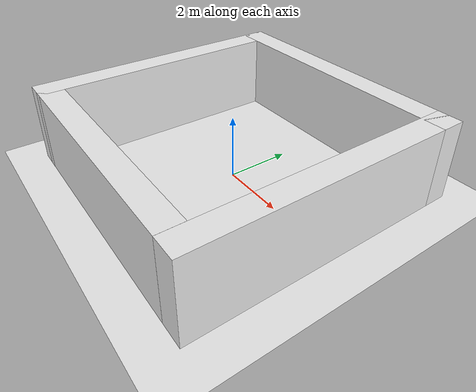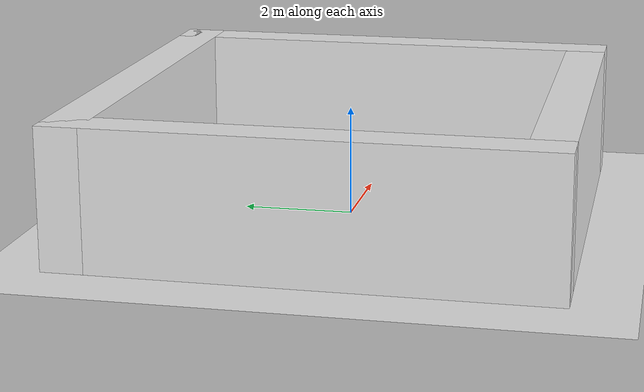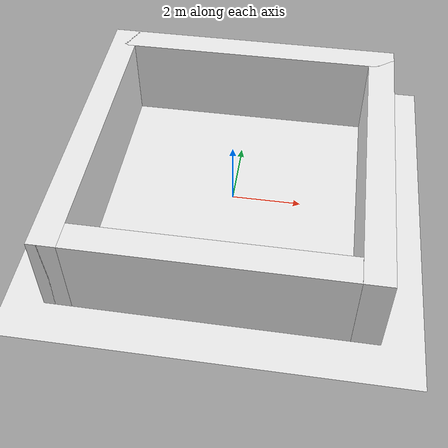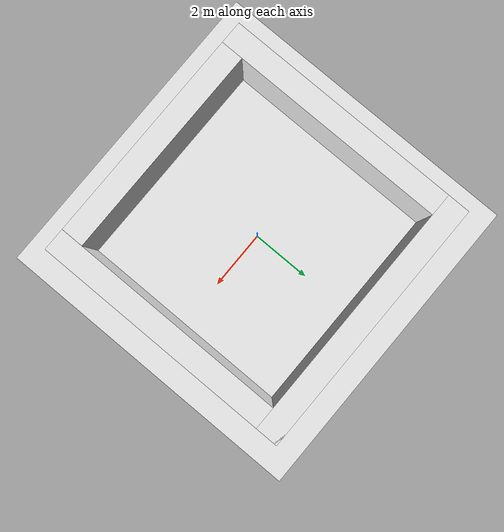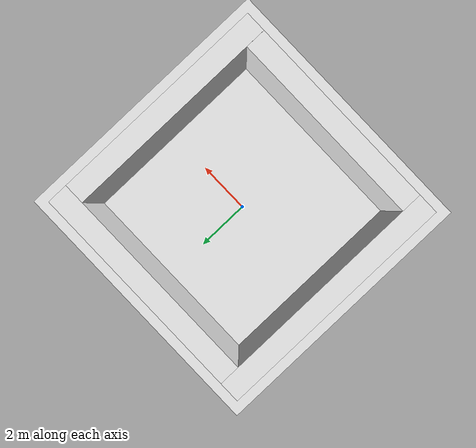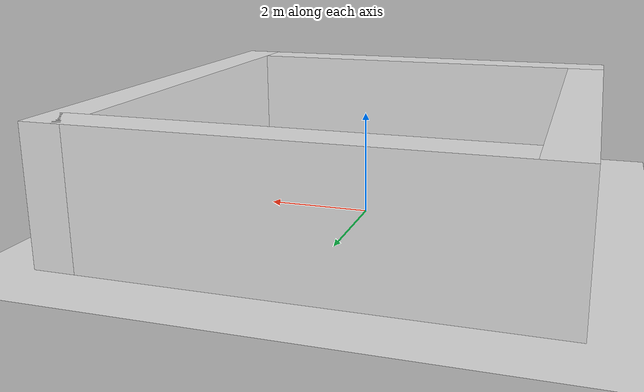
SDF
<sdf version="1.6">
 <world name="default">
  <light name="sun" type="directional">
   <pose>0 0 10 0 -0 0</pose>
   <diffuse>0.8 0.8 0.8 1</diffuse>
   <specular>0.2 0.2 0.2 1</specular>
   <attenuation>
    <range>1000</range>
    <constant>0.9</constant>
    <linear>0.01</linear>
    <quadratic>0.001</quadratic>
   </attenuation>
   <direction>-0.5 0.1 -0.9</direction>
  </light>
  <light name="sun" type="directional">
   <pose>0 0 13 0 -0 0</pose>
   <diffuse>0.8 0.8 0.8 1</diffuse>
   <specular>0.2 0.2 0.2 1</specular>
   <attenuation>
    <range>1000</range>
    <constant>0.9</constant>
    <linear>0.01</linear>
    <quadratic>0.001</quadratic>
   </attenuation>
   <direction>-0.5 0.1 -0.9</direction>
  </light>
  <model name="ground_plane">
   <static>1</static>
   <link name="link">
    <collision name="collision">
     <geometry><plane><normal>0 0 1</normal><size>100 100</size></plane></geometry>
     <surface>
      <contact><collide_bitmask>65535</collide_bitmask></contact>
      <friction><ode><mu>100</mu><mu2>50</mu2></ode></friction>
     </surface>
    </collision>
    <visual name="visual">
     <cast_shadows>0</cast_shadows>
     <geometry><plane><normal>0 0 1</normal><size>100 100</size></plane></geometry>
     <material>
      <script><uri>file://media/materials/scripts/gazebo.material</uri><name>Gazebo/White</name></script>
     </material>
    </visual>
   </link>
  </model>
  <gravity>0 0 -9.8</gravity>
  <magnetic_field>6e-06 2.3e-05 -4.2e-05</magnetic_field>
  <atmosphere type="adiabatic"/>
  <physics name="default_physics" default="0" type="ode">
   <max_step_size>0.001</max_step_size>
   <real_time_factor>1</real_time_factor>
   <real_time_update_rate>1000</real_time_update_rate>
  </physics>
  <scene><ambient>0.4 0.4 0.4 1</ambient><background>0.7 0.7 0.7 1</background><shadows>0</shadows></scene>
  <audio><device>default</device></audio>
  <spherical_coordinates>
   <surface_model>EARTH_WGS84</surface_model>
   <latitude_deg>0</latitude_deg>
   <longitude_deg>0</longitude_deg>
   <elevation>0</elevation>
   <heading_deg>0</heading_deg>
  </spherical_coordinates>
  <model name="m1">
   <link name="Wall_0">
    <collision name="Wall_0_Collision">
     <geometry><box><size>8.76 0.76 2.5</size></box></geometry>
     <pose>0 0 1.25 0 -0 0</pose>
    </collision>
    <visual name="Wall_0_Visual">
     <pose>0 0 1.25 0 -0 0</pose>
     <geometry><box><size>8.76 0.76 2.5</size></box></geometry>
     <material>
      <script><uri>file://media/materials/scripts/gazebo.material</uri><name>Gazebo/White</name></script>
      <ambient>1 1 1 1</ambient>
     </material>
     <meta><layer>0</layer></meta>
    </visual>
    <pose>-4 0 0 0 -0 -1.5708</pose>
   </link>
   <link name="Wall_2">
    <collision name="Wall_2_Collision">
     <geometry><box><size>8.76 0.76 2.5</size></box></geometry>
     <pose>0 0 1.25 0 -0 0</pose>
    </collision>
    <visual name="Wall_2_Visual">
     <pose>0 0 1.25 0 -0 0</pose>
     <geometry><box><size>8.76 0.76 2.5</size></box></geometry>
     <material>
      <script><uri>file://media/materials/scripts/gazebo.material</uri><name>Gazebo/White</name></script>
      <ambient>1 1 1 1</ambient>
     </material>
     <meta><layer>0</layer></meta>
    </visual>
    <pose>0 4 0 0 -0 3.14159</pose>
   </link>
   <link name="Wall_4">
    <collision name="Wall_4_Collision">
     <geometry><box><size>8.76 0.76 2.5</size></box></geometry>
     <pose>0 0 1.25 0 -0 0</pose>
    </collision>
    <visual name="Wall_4_Visual">
     <pose>0 0 1.25 0 -0 0</pose>
     <geometry><box><size>8.76 0.76 2.5</size></box></geometry>
     <material>
      <script><uri>file://media/materials/scripts/gazebo.material</uri><name>Gazebo/White</name></script>
      <ambient>1 1 1 1</ambient>
     </material>
     <meta><layer>0</layer></meta>
    </visual>
    <pose>4 0 0 0 -0 1.5708</pose>
   </link>
   <link name="Wall_6">
    <collision name="Wall_6_Collision">
     <geometry><box><size>7.999 0.76 2.5</size></box></geometry>
     <pose>0 0 1.25 0 -0 0</pose>
    </collision>
    <visual name="Wall_6_Visual">
     <pose>0 0 1.25 0 -0 0</pose>
     <geometry><box><size>7.999 0.76 2.5</size></box></geometry>
     <material>
      <script><uri>file://media/materials/scripts/gazebo.material</uri><name>Gazebo/White</name></script>
      <ambient>1 1 1 1</ambient>
     </material>
     <meta><layer>0</layer></meta>
    </visual>
    <pose>-0.3805 -4 0 0 -0 0</pose>
   </link>
   <static>1</static>
  </model>
  <light name="user_spot_light_0" type="spot">
   <pose>3.43494 3.34931 1 0 -0 0</pose>
   <diffuse>1 1 1 1</diffuse>
   <specular>1 1 1 1</specular>
   <direction>0 0 -1</direction>
   <attenuation>
    <range>20</range>
    <constant>0.01</constant>
    <linear>0.01</linear>
    <quadratic>0.001</quadratic>
   </attenuation>
   <cast_shadows>0</cast_shadows>
   <spot><inner_angle>1</inner_angle><outer_angle>0</outer_angle><falloff>0</falloff></spot>
  </light>
  <light name="user_spot_light_1" type="spot">
   <pose>3.5153 -3.32836 1 0 -0 0</pose>
   <diffuse>1 1 1 1</diffuse>
   <specular>1 1 1 1</specular>
   <direction>0 0 -1</direction>
   <attenuation>
    <range>20</range>
    <constant>0.01</constant>
    <linear>0.01</linear>
    <quadratic>0.001</quadratic>
   </attenuation>
   <cast_shadows>0</cast_shadows>
   <spot><inner_angle>1</inner_angle><outer_angle>0</outer_angle><falloff>0</falloff></spot>
  </light>
 </world>
</sdf>
